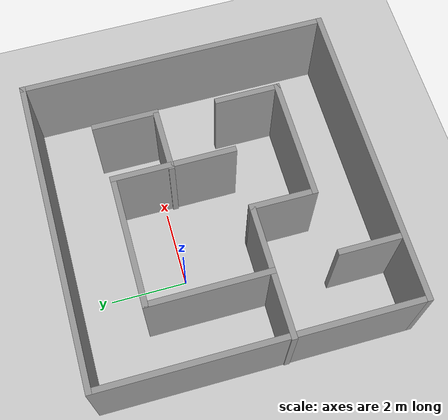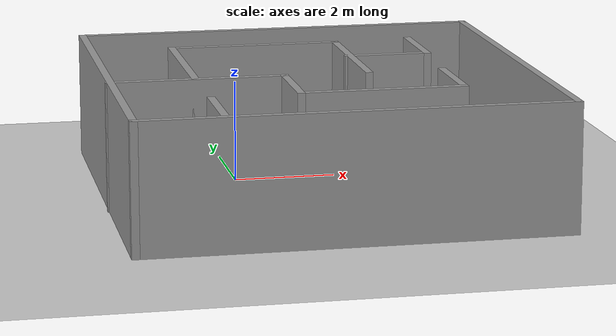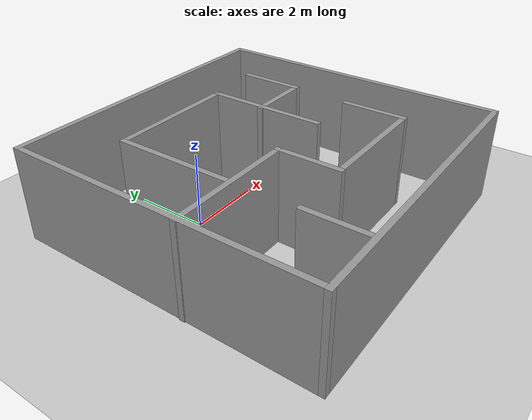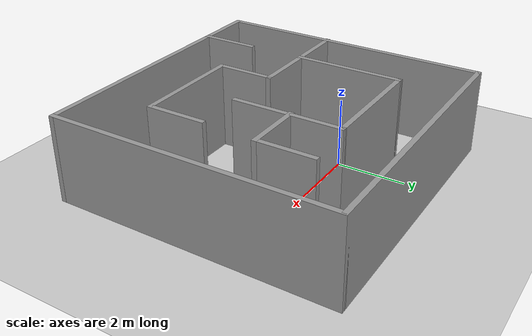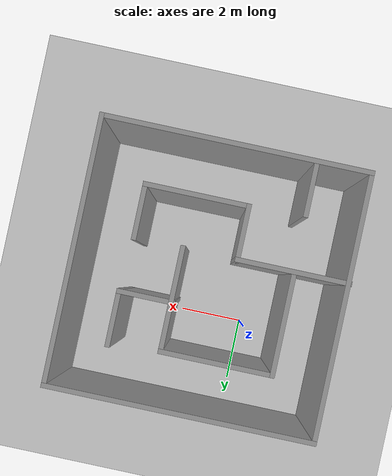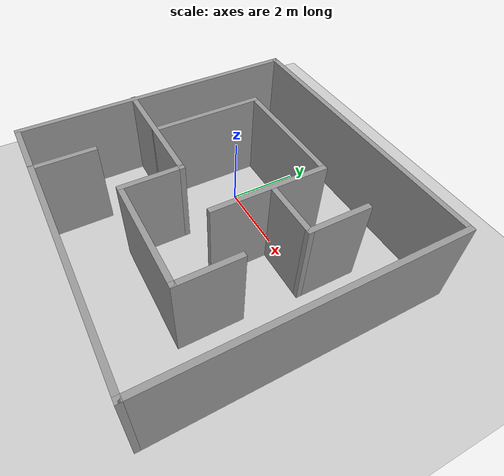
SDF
<sdf version="1.7">
 <world name="default">
  <model name="ground_plane">
   <static>1</static>
   <link name="link">
    <collision name="collision">
     <geometry><plane><normal>0 0 1</normal><size>100 100</size></plane></geometry>
     <surface><friction><ode><mu>100</mu><mu2>50</mu2></ode></friction></surface>
    </collision>
    <visual name="visual">
     <cast_shadows>0</cast_shadows>
     <geometry><plane><normal>0 0 1</normal><size>100 100</size></plane></geometry>
     <material>
      <script><uri>file://media/materials/scripts/gazebo.material</uri><name>Gazebo/Grey</name></script>
     </material>
    </visual>
   </link>
  </model>
  <light name="sun" type="directional">
   <pose>0 0 10 0 -0 0</pose>
   <diffuse>0.8 0.8 0.8 1</diffuse>
   <specular>0.2 0.2 0.2 1</specular>
   <attenuation>
    <range>1000</range>
    <constant>0.9</constant>
    <linear>0.01</linear>
    <quadratic>0.001</quadratic>
   </attenuation>
   <direction>-0.5 0.1 -0.9</direction>
   <spot><inner_angle>0</inner_angle><outer_angle>0</outer_angle><falloff>0</falloff></spot>
  </light>
  <scene><shadows>0</shadows><ambient>0.4 0.4 0.4 1</ambient><background>0.7 0.7 0.7 1</background></scene>
  <physics type="ode">
   <real_time_update_rate>1000</real_time_update_rate>
   <max_step_size>0.001</max_step_size>
   <real_time_factor>1</real_time_factor>
   <ode>
    <solver>
     <type>quick</type>
     <iters>150</iters>
     <precon_iters>0</precon_iters>
     <sor>1.4</sor>
     <use_dynamic_moi_rescaling>1</use_dynamic_moi_rescaling>
    </solver>
    <constraints>
     <cfm>1e-05</cfm>
     <erp>0.2</erp>
     <contact_max_correcting_vel>2000</contact_max_correcting_vel>
     <contact_surface_layer>0.01</contact_surface_layer>
    </constraints>
   </ode>
  </physics>
  <gravity>0 0 -9.8</gravity>
  <magnetic_field>6e-06 2.3e-05 -4.2e-05</magnetic_field>
  <atmosphere type="adiabatic"/>
  <audio><device>default</device></audio>
  <spherical_coordinates>
   <surface_model>EARTH_WGS84</surface_model>
   <latitude_deg>0</latitude_deg>
   <longitude_deg>0</longitude_deg>
   <elevation>0</elevation>
   <heading_deg>0</heading_deg>
  </spherical_coordinates>
  <model name="5by5_maze">
   <pose>1.34646 -1.17934 0 0 -0 0</pose>
   <link name="Wall_44">
    <collision name="Wall_44_Collision">
     <geometry><box><size>8.25 0.15 2.5</size></box></geometry>
     <pose>0 0 1.25 0 -0 0</pose>
    </collision>
    <visual name="Wall_44_Visual">
     <pose>0 0 1.25 0 -0 0</pose>
     <geometry><box><size>8.25 0.15 2.5</size></box></geometry>
     <material>
      <script><uri>file://media/materials/scripts/gazebo.material</uri><name>Gazebo/Grey</name></script>
      <ambient>1 1 1 1</ambient>
     </material>
     <meta><layer>0</layer></meta>
    </visual>
    <pose>0.013225 4.05 0 0 -0 0</pose>
   </link>
   <link name="Wall_45">
    <collision name="Wall_45_Collision">
     <geometry><box><size>8.25 0.15 2.5</size></box></geometry>
     <pose>0 0 1.25 0 -0 0</pose>
    </collision>
    <visual name="Wall_45_Visual">
     <pose>0 0 1.25 0 -0 0</pose>
     <geometry><box><size>8.25 0.15 2.5</size></box></geometry>
     <material>
      <script><uri>file://media/materials/scripts/gazebo.material</uri><name>Gazebo/Grey</name></script>
      <ambient>1 1 1 1</ambient>
     </material>
     <meta><layer>0</layer></meta>
    </visual>
    <pose>4.06323 0 0 0 -0 -1.5708</pose>
   </link>
   <link name="Wall_46">
    <collision name="Wall_46_Collision">
     <geometry><box><size>8.25 0.15 2.5</size></box></geometry>
     <pose>0 0 1.25 0 -0 0</pose>
    </collision>
    <visual name="Wall_46_Visual">
     <pose>0 0 1.25 0 -0 0</pose>
     <geometry><box><size>8.25 0.15 2.5</size></box></geometry>
     <material>
      <script><uri>file://media/materials/scripts/gazebo.material</uri><name>Gazebo/Grey</name></script>
      <ambient>1 1 1 1</ambient>
     </material>
     <meta><layer>0</layer></meta>
    </visual>
    <pose>0.013225 -4.05 0 0 -0 3.14159</pose>
   </link>
   <link name="Wall_47">
    <collision name="Wall_47_Collision">
     <geometry><box><size>8.25 0.15 2.5</size></box></geometry>
     <pose>0 0 1.25 0 -0 0</pose>
    </collision>
    <visual name="Wall_47_Visual">
     <pose>0 0 1.25 0 -0 0</pose>
     <geometry><box><size>8.25 0.15 2.5</size></box></geometry>
     <material>
      <script><uri>file://media/materials/scripts/gazebo.material</uri><name>Gazebo/Grey</name></script>
      <ambient>1 1 1 1</ambient>
     </material>
     <meta><layer>0</layer></meta>
    </visual>
    <pose>-4.03677 0 0 0 -0 1.5708</pose>
   </link>
   <link name="Wall_49">
    <collision name="Wall_49_Collision">
     <geometry><box><size>3.5 0.15 2.5</size></box></geometry>
     <pose>0 0 1.25 0 -0 0</pose>
    </collision>
    <visual name="Wall_49_Visual">
     <pose>0 0 1.25 0 -0 0</pose>
     <geometry><box><size>3.5 0.15 2.5</size></box></geometry>
     <material>
      <script><uri>file://media/materials/scripts/gazebo.material</uri><name>Gazebo/Grey</name></script>
      <ambient>1 1 1 1</ambient>
     </material>
     <meta><layer>0</layer></meta>
    </visual>
    <pose>-2.38822 -0.73745 0 0 -0 0</pose>
   </link>
   <link name="Wall_50">
    <collision name="Wall_50_Collision">
     <geometry><box><size>1.75 0.15 2.5</size></box></geometry>
     <pose>0 0 1.25 0 -0 0</pose>
    </collision>
    <visual name="Wall_50_Visual">
     <pose>0 0 1.25 0 -0 0</pose>
     <geometry><box><size>1.75 0.15 2.5</size></box></geometry>
     <material>
      <script><uri>file://media/materials/scripts/gazebo.material</uri><name>Gazebo/Grey</name></script>
      <ambient>1 1 1 1</ambient>
     </material>
     <meta><layer>0</layer></meta>
    </visual>
    <pose>-0.713225 -1.53745 0 0 -0 -1.5708</pose>
   </link>
   <link name="Wall_51">
    <collision name="Wall_51_Collision">
     <geometry><box><size>3.25 0.15 2.5</size></box></geometry>
     <pose>0 0 1.25 0 -0 0</pose>
    </collision>
    <visual name="Wall_51_Visual">
     <pose>0 0 1.25 0 -0 0</pose>
     <geometry><box><size>3.25 0.15 2.5</size></box></geometry>
     <material>
      <script><uri>file://media/materials/scripts/gazebo.material</uri><name>Gazebo/Grey</name></script>
      <ambient>1 1 1 1</ambient>
     </material>
     <meta><layer>0</layer></meta>
    </visual>
    <pose>0.836775 -2.33745 0 0 -0 0</pose>
   </link>
   <link name="Wall_52">
    <collision name="Wall_52_Collision">
     <geometry><box><size>1.75 0.15 2.5</size></box></geometry>
     <pose>0 0 1.25 0 -0 0</pose>
    </collision>
    <visual name="Wall_52_Visual">
     <pose>0 0 1.25 0 -0 0</pose>
     <geometry><box><size>1.75 0.15 2.5</size></box></geometry>
     <material>
      <script><uri>file://media/materials/scripts/gazebo.material</uri><name>Gazebo/Grey</name></script>
      <ambient>1 1 1 1</ambient>
     </material>
     <meta><layer>0</layer></meta>
    </visual>
    <pose>2.38678 -1.53745 0 0 -0 1.5708</pose>
   </link>
   <link name="Wall_54">
    <collision name="Wall_54_Collision">
     <geometry><box><size>3.25 0.15 2.5</size></box></geometry>
     <pose>0 0 1.25 0 -0 0</pose>
    </collision>
    <visual name="Wall_54_Visual">
     <pose>0 0 1.25 0 -0 0</pose>
     <geometry><box><size>3.25 0.15 2.5</size></box></geometry>
     <material>
      <script><uri>file://media/materials/scripts/gazebo.material</uri><name>Gazebo/Grey</name></script>
      <ambient>1 1 1 1</ambient>
     </material>
     <meta><layer>0</layer></meta>
    </visual>
    <pose>-2.42333 0.81255 0 0 -0 1.5708</pose>
   </link>
   <link name="Wall_57">
    <collision name="Wall_57_Collision">
     <geometry><box><size>3.5 0.15 2.5</size></box></geometry>
     <pose>0 0 1.25 0 -0 0</pose>
    </collision>
    <visual name="Wall_57_Visual">
     <pose>0 0 1.25 0 -0 0</pose>
     <geometry><box><size>3.5 0.15 2.5</size></box></geometry>
     <material>
      <script><uri>file://media/materials/scripts/gazebo.material</uri><name>Gazebo/Grey</name></script>
      <ambient>1 1 1 1</ambient>
     </material>
     <meta><layer>0</layer></meta>
    </visual>
    <pose>-0.748325 2.36255 0 0 -0 0</pose>
   </link>
   <link name="Wall_58">
    <collision name="Wall_58_Collision">
     <geometry><box><size>3.25 0.15 2.5</size></box></geometry>
     <pose>0 0 1.25 0 -0 0</pose>
    </collision>
    <visual name="Wall_58_Visual">
     <pose>0 0 1.25 0 -0 0</pose>
     <geometry><box><size>3.25 0.15 2.5</size></box></geometry>
     <material>
      <script><uri>file://media/materials/scripts/gazebo.material</uri><name>Gazebo/Grey</name></script>
      <ambient>1 1 1 1</ambient>
     </material>
     <meta><layer>0</layer></meta>
    </visual>
    <pose>0.926675 0.81255 0 0 -0 -1.5708</pose>
   </link>
   <link name="Wall_60">
    <collision name="Wall_60_Collision">
     <geometry><box><size>1.75 0.15 2.5</size></box></geometry>
     <pose>0 0 1.25 0 -0 0</pose>
    </collision>
    <visual name="Wall_60_Visual">
     <pose>0 0 1.25 0 -0 0</pose>
     <geometry><box><size>1.75 0.15 2.5</size></box></geometry>
     <material>
      <script><uri>file://media/materials/scripts/gazebo.material</uri><name>Gazebo/Grey</name></script>
      <ambient>1 1 1 1</ambient>
     </material>
     <meta><layer>0</layer></meta>
    </visual>
    <pose>1.68293 0.889225 0 0 -0 0</pose>
   </link>
   <link name="Wall_61">
    <collision name="Wall_61_Collision">
     <geometry><box><size>1.75 0.15 2.5</size></box></geometry>
     <pose>0 0 1.25 0 -0 0</pose>
    </collision>
    <visual name="Wall_61_Visual">
     <pose>0 0 1.25 0 -0 0</pose>
     <geometry><box><size>1.75 0.15 2.5</size></box></geometry>
     <material>
      <script><uri>file://media/materials/scripts/gazebo.material</uri><name>Gazebo/Grey</name></script>
      <ambient>1 1 1 1</ambient>
     </material>
     <meta><layer>0</layer></meta>
    </visual>
    <pose>2.48292 1.68922 0 0 -0 1.5708</pose>
   </link>
   <link name="Wall_64">
    <collision name="Wall_64_Collision">
     <geometry><box><size>1.75 0.15 2.5</size></box></geometry>
     <pose>0 0 1.25 0 -0 0</pose>
    </collision>
    <visual name="Wall_64_Visual">
     <pose>0 0 1.25 0 -0 0</pose>
     <geometry><box><size>1.75 0.15 2.5</size></box></geometry>
     <material>
      <script><uri>file://media/materials/scripts/gazebo.material</uri><name>Gazebo/Grey</name></script>
      <ambient>1 1 1 1</ambient>
     </material>
     <meta><layer>0</layer></meta>
    </visual>
    <pose>-2.39688 -3.2437 0 0 -0 1.5708</pose>
   </link>
   <static>1</static>
  </model>
 </world>
</sdf>
